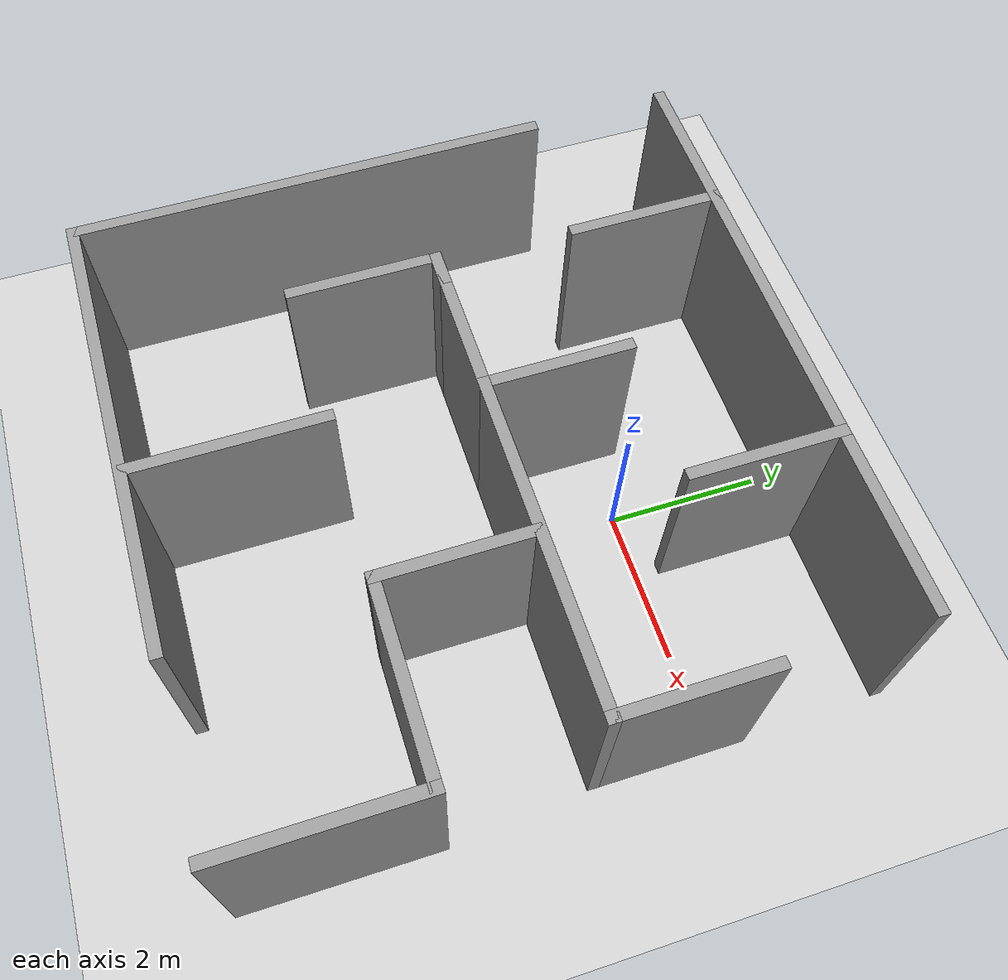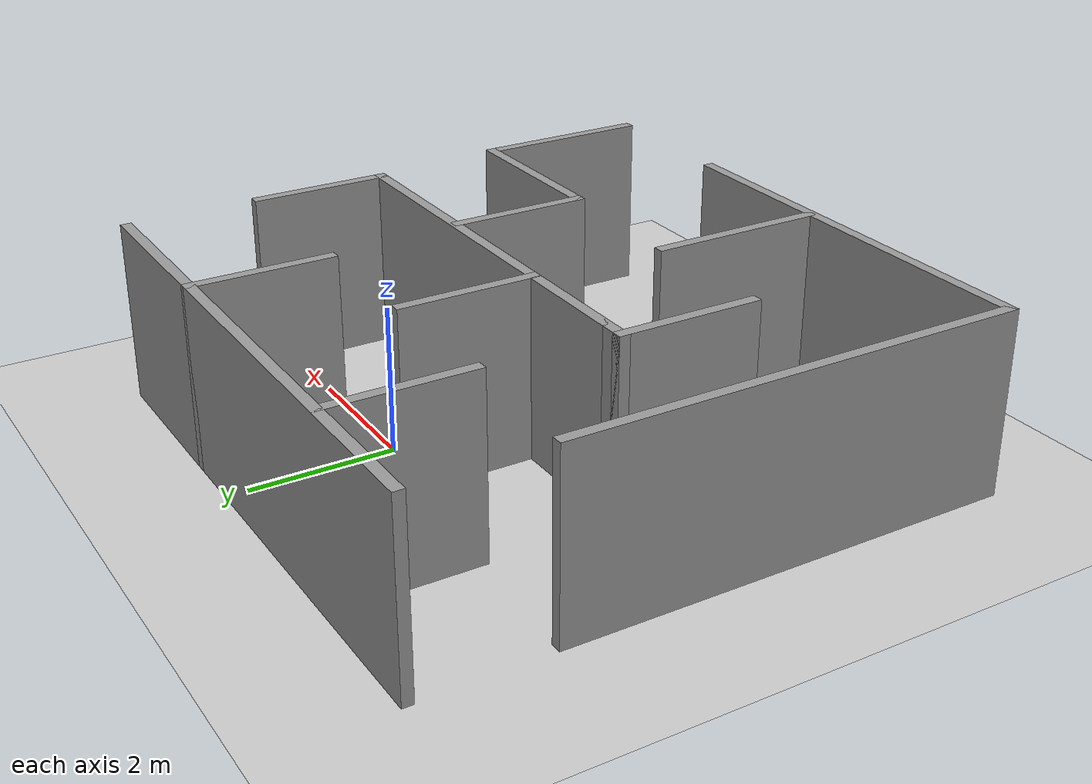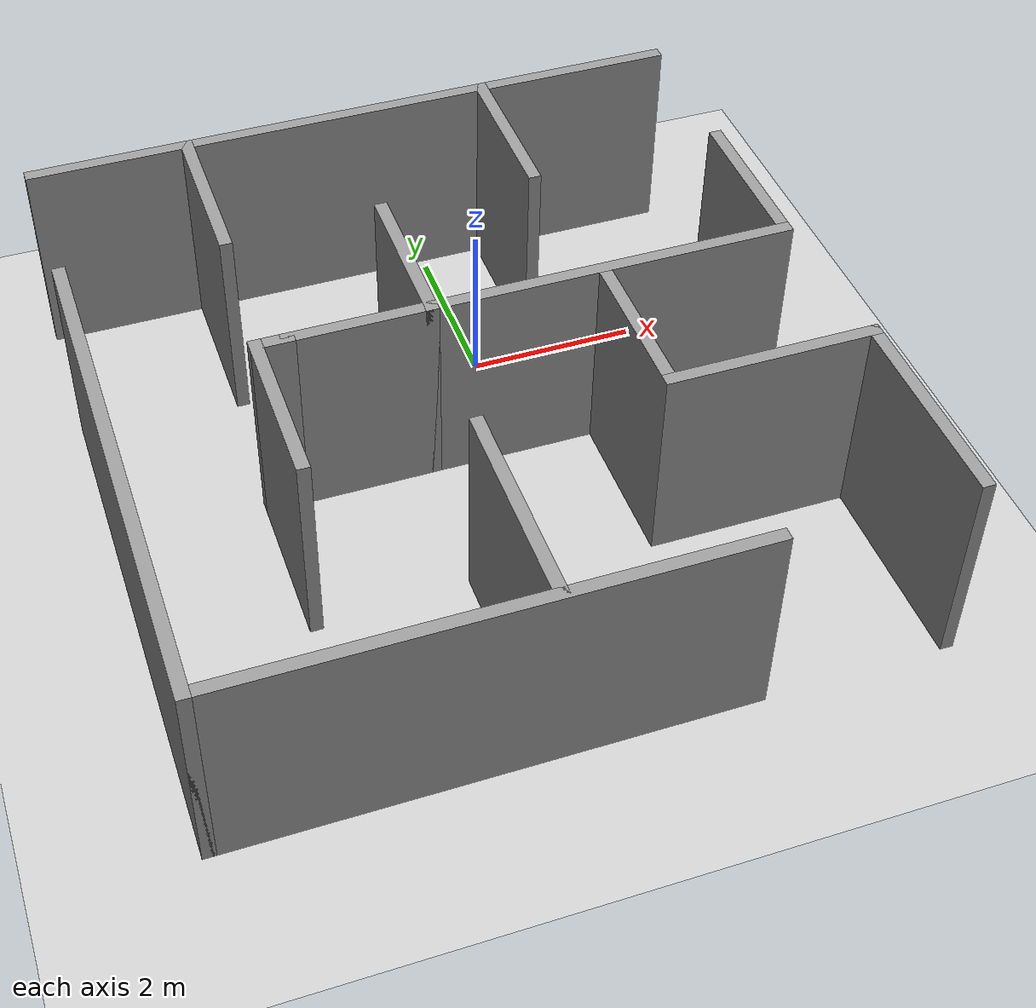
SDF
<sdf version="1.7">
 <world name="default">
  <light name="sun" type="directional">
   <pose>0 0 10 0 -0 0</pose>
   <diffuse>0.8 0.8 0.8 1</diffuse>
   <specular>0.2 0.2 0.2 1</specular>
   <attenuation>
    <range>1000</range>
    <constant>0.9</constant>
    <linear>0.01</linear>
    <quadratic>0.001</quadratic>
   </attenuation>
   <direction>-0.5 0.1 -0.9</direction>
   <spot><inner_angle>0</inner_angle><outer_angle>0</outer_angle><falloff>0</falloff></spot>
  </light>
  <model name="ground_plane">
   <static>1</static>
   <link name="link">
    <collision name="collision">
     <geometry><plane><normal>0 0 1</normal><size>100 100</size></plane></geometry>
     <surface>
      <contact><collide_bitmask>65535</collide_bitmask></contact>
      <friction><ode><mu>100</mu><mu2>50</mu2></ode></friction>
     </surface>
    </collision>
    <visual name="visual">
     <cast_shadows>0</cast_shadows>
     <geometry><plane><normal>0 0 1</normal><size>100 100</size></plane></geometry>
     <material>
      <script><uri>file://media/materials/scripts/gazebo.material</uri><name>Gazebo/Grey</name></script>
     </material>
    </visual>
   </link>
  </model>
  <gravity>0 0 -9.8</gravity>
  <magnetic_field>6e-06 2.3e-05 -4.2e-05</magnetic_field>
  <atmosphere type="adiabatic"/>
  <physics type="ode">
   <max_step_size>0.001</max_step_size>
   <real_time_factor>1</real_time_factor>
   <real_time_update_rate>1000</real_time_update_rate>
  </physics>
  <scene><ambient>0.4 0.4 0.4 1</ambient><background>0.7 0.7 0.7 1</background><shadows>1</shadows></scene>
  <spherical_coordinates>
   <surface_model>EARTH_WGS84</surface_model>
   <latitude_deg>0</latitude_deg>
   <longitude_deg>0</longitude_deg>
   <elevation>0</elevation>
   <heading_deg>0</heading_deg>
  </spherical_coordinates>
  <model name="newmaze">
   <pose>-0.702631 -1.19935 0 0 -0 0</pose>
   <link name="Wall_0">
    <collision name="Wall_0_Collision">
     <geometry><box><size>8 0.15 2.5</size></box></geometry>
     <pose>0 0 1.25 0 -0 0</pose>
    </collision>
    <visual name="Wall_0_Visual">
     <pose>0 0 1.25 0 -0 0</pose>
     <geometry><box><size>8 0.15 2.5</size></box></geometry>
     <material>
      <script><uri>file://media/materials/scripts/gazebo.material</uri><name>Gazebo/Grey</name></script>
      <ambient>1 1 1 1</ambient>
     </material>
     <meta><layer>0</layer></meta>
    </visual>
    <pose>-0.099994 3.4225 0 0 -0 0</pose>
   </link>
   <link name="Wall_13">
    <collision name="Wall_13_Collision">
     <geometry><box><size>1.95374 0.15 2.5</size></box></geometry>
     <pose>0 0 1.25 0 -0 0</pose>
    </collision>
    <visual name="Wall_13_Visual">
     <pose>0 0 1.25 0 -0 0</pose>
     <geometry><box><size>1.95374 0.15 2.5</size></box></geometry>
     <material>
      <script><uri>file://media/materials/scripts/gazebo.material</uri><name>Gazebo/Grey</name></script>
      <ambient>1 1 1 1</ambient>
     </material>
     <meta><layer>0</layer></meta>
    </visual>
    <pose>-0.324994 0.624369 0 0 -0 -1.5708</pose>
   </link>
   <link name="Wall_15">
    <collision name="Wall_15_Collision">
     <geometry><box><size>2 0.15 2.5</size></box></geometry>
     <pose>0 0 1.25 0 -0 0</pose>
    </collision>
    <visual name="Wall_15_Visual">
     <pose>0 0 1.25 0 -0 0</pose>
     <geometry><box><size>2 0.15 2.5</size></box></geometry>
     <material>
      <script><uri>file://media/materials/scripts/gazebo.material</uri><name>Gazebo/Grey</name></script>
      <ambient>1 1 1 1</ambient>
     </material>
     <meta><layer>0</layer></meta>
    </visual>
    <pose>1.52501 2.4975 0 0 -0 1.5708</pose>
   </link>
   <link name="Wall_18">
    <collision name="Wall_18_Collision">
     <geometry><box><size>2 0.15 2.5</size></box></geometry>
     <pose>0 0 1.25 0 -0 0</pose>
    </collision>
    <visual name="Wall_18_Visual">
     <pose>0 0 1.25 0 -0 0</pose>
     <geometry><box><size>2 0.15 2.5</size></box></geometry>
     <material>
      <script><uri>file://media/materials/scripts/gazebo.material</uri><name>Gazebo/Grey</name></script>
      <ambient>1 1 1 1</ambient>
     </material>
     <meta><layer>0</layer></meta>
    </visual>
    <pose>3.87501 0.6475 0 0 -0 -1.5708</pose>
   </link>
   <link name="Wall_19">
    <collision name="Wall_19_Collision">
     <geometry><box><size>4.35 0.15 2.5</size></box></geometry>
     <pose>0 0 1.25 0 -0 0</pose>
    </collision>
    <visual name="Wall_19_Visual">
     <pose>0 0 1.25 0 -0 0</pose>
     <geometry><box><size>4.35 0.15 2.5</size></box></geometry>
     <material>
      <script><uri>file://media/materials/scripts/gazebo.material</uri><name>Gazebo/Grey</name></script>
      <ambient>1 1 1 1</ambient>
     </material>
     <meta><layer>0</layer></meta>
    </visual>
    <pose>1.77501 -0.2775 0 0 -0 3.14159</pose>
   </link>
   <link name="Wall_21">
    <collision name="Wall_21_Collision">
     <geometry><box><size>1.75 0.15 2.5</size></box></geometry>
     <pose>0 0 1.25 0 -0 0</pose>
    </collision>
    <visual name="Wall_21_Visual">
     <pose>0 0 1.25 0 -0 0</pose>
     <geometry><box><size>1.75 0.15 2.5</size></box></geometry>
     <material>
      <script><uri>file://media/materials/scripts/gazebo.material</uri><name>Gazebo/Grey</name></script>
      <ambient>1 1 1 1</ambient>
     </material>
     <meta><layer>0</layer></meta>
    </visual>
    <pose>-1.12499 -0.2775 0 0 -0 3.14159</pose>
   </link>
   <link name="Wall_22">
    <collision name="Wall_22_Collision">
     <geometry><box><size>0.5 0.15 2.5</size></box></geometry>
     <pose>0 0 1.25 0 -0 0</pose>
    </collision>
    <visual name="Wall_22_Visual">
     <pose>0 0 1.25 0 -0 0</pose>
     <geometry><box><size>0.5 0.15 2.5</size></box></geometry>
     <material>
      <script><uri>file://media/materials/scripts/gazebo.material</uri><name>Gazebo/Grey</name></script>
      <ambient>1 1 1 1</ambient>
     </material>
     <meta><layer>0</layer></meta>
    </visual>
    <pose>-2.09999 -0.2775 0 0 -0 3.14159</pose>
   </link>
   <link name="Wall_23">
    <collision name="Wall_23_Collision">
     <geometry><box><size>2 0.15 2.5</size></box></geometry>
     <pose>0 0 1.25 0 -0 0</pose>
    </collision>
    <visual name="Wall_23_Visual">
     <pose>0 0 1.25 0 -0 0</pose>
     <geometry><box><size>2 0.15 2.5</size></box></geometry>
     <material>
      <script><uri>file://media/materials/scripts/gazebo.material</uri><name>Gazebo/Grey</name></script>
      <ambient>1 1 1 1</ambient>
     </material>
     <meta><layer>0</layer></meta>
    </visual>
    <pose>-2.27499 -1.2025 0 0 -0 -1.5708</pose>
   </link>
   <link name="Wall_25">
    <collision name="Wall_25_Collision">
     <geometry><box><size>2.5 0.15 2.5</size></box></geometry>
     <pose>0 0 1.25 0 -0 0</pose>
    </collision>
    <visual name="Wall_25_Visual">
     <pose>0 0 1.25 0 -0 0</pose>
     <geometry><box><size>2.5 0.15 2.5</size></box></geometry>
     <material>
      <script><uri>file://media/materials/scripts/gazebo.material</uri><name>Gazebo/Grey</name></script>
      <ambient>1 1 1 1</ambient>
     </material>
     <meta><layer>0</layer></meta>
    </visual>
    <pose>-0.424994 -3.3025 0 0 -0 -1.5708</pose>
   </link>
   <link name="Wall_27">
    <collision name="Wall_27_Collision">
     <geometry><box><size>2 0.15 2.5</size></box></geometry>
     <pose>0 0 1.25 0 -0 0</pose>
    </collision>
    <visual name="Wall_27_Visual">
     <pose>0 0 1.25 0 -0 0</pose>
     <geometry><box><size>2 0.15 2.5</size></box></geometry>
     <material>
      <script><uri>file://media/materials/scripts/gazebo.material</uri><name>Gazebo/Grey</name></script>
      <ambient>1 1 1 1</ambient>
     </material>
     <meta><layer>0</layer></meta>
    </visual>
    <pose>1.67499 -1.24488 0 0 -0 -1.5708</pose>
   </link>
   <link name="Wall_28">
    <collision name="Wall_28_Collision">
     <geometry><box><size>2.5 0.15 2.5</size></box></geometry>
     <pose>0 0 1.25 0 -0 0</pose>
    </collision>
    <visual name="Wall_28_Visual">
     <pose>0 0 1.25 0 -0 0</pose>
     <geometry><box><size>2.5 0.15 2.5</size></box></geometry>
     <material>
      <script><uri>file://media/materials/scripts/gazebo.material</uri><name>Gazebo/Grey</name></script>
      <ambient>1 1 1 1</ambient>
     </material>
     <meta><layer>0</layer></meta>
    </visual>
    <pose>2.84999 -2.16988 0 0 -0 0</pose>
   </link>
   <link name="Wall_29">
    <collision name="Wall_29_Collision">
     <geometry><box><size>2.5 0.15 2.5</size></box></geometry>
     <pose>0 0 1.25 0 -0 0</pose>
    </collision>
    <visual name="Wall_29_Visual">
     <pose>0 0 1.25 0 -0 0</pose>
     <geometry><box><size>2.5 0.15 2.5</size></box></geometry>
     <material>
      <script><uri>file://media/materials/scripts/gazebo.material</uri><name>Gazebo/Grey</name></script>
      <ambient>1 1 1 1</ambient>
     </material>
     <meta><layer>0</layer></meta>
    </visual>
    <pose>4.02499 -3.34488 0 0 -0 -1.5708</pose>
   </link>
   <link name="Wall_3">
    <collision name="Wall_3_Collision">
     <geometry><box><size>6.25 0.15 2.5</size></box></geometry>
     <pose>0 0 1.25 0 -0 0</pose>
    </collision>
    <visual name="Wall_3_Visual">
     <pose>0 0 1.25 0 -0 0</pose>
     <geometry><box><size>6.25 0.15 2.5</size></box></geometry>
     <material>
      <script><uri>file://media/materials/scripts/gazebo.material</uri><name>Gazebo/Grey</name></script>
      <ambient>1 1 1 1</ambient>
     </material>
     <meta><layer>0</layer></meta>
    </visual>
    <pose>-4.02499 -1.4775 0 0 -0 -1.5708</pose>
   </link>
   <link name="Wall_5">
    <collision name="Wall_5_Collision">
     <geometry><box><size>6 0.15 2.5</size></box></geometry>
     <pose>0 0 1.25 0 -0 0</pose>
    </collision>
    <visual name="Wall_5_Visual">
     <pose>0 0 1.25 0 -0 0</pose>
     <geometry><box><size>6 0.15 2.5</size></box></geometry>
     <material>
      <script><uri>file://media/materials/scripts/gazebo.material</uri><name>Gazebo/Grey</name></script>
      <ambient>1 1 1 1</ambient>
     </material>
     <meta><layer>0</layer></meta>
    </visual>
    <pose>-1.09999 -4.5275 0 0 -0 0</pose>
   </link>
   <link name="Wall_8">
    <collision name="Wall_8_Collision">
     <geometry><box><size>2.04626 0.15 2.5</size></box></geometry>
     <pose>0 0 1.25 0 -0 0</pose>
    </collision>
    <visual name="Wall_8_Visual">
     <pose>0 0 1.25 0 -0 0</pose>
     <geometry><box><size>2.04626 0.15 2.5</size></box></geometry>
     <material>
      <script><uri>file://media/materials/scripts/gazebo.material</uri><name>Gazebo/Grey</name></script>
      <ambient>1 1 1 1</ambient>
     </material>
     <meta><layer>0</layer></meta>
    </visual>
    <pose>-2.17499 2.47437 0 0 -0 1.5708</pose>
   </link>
   <static>1</static>
  </model>
 </world>
</sdf>
